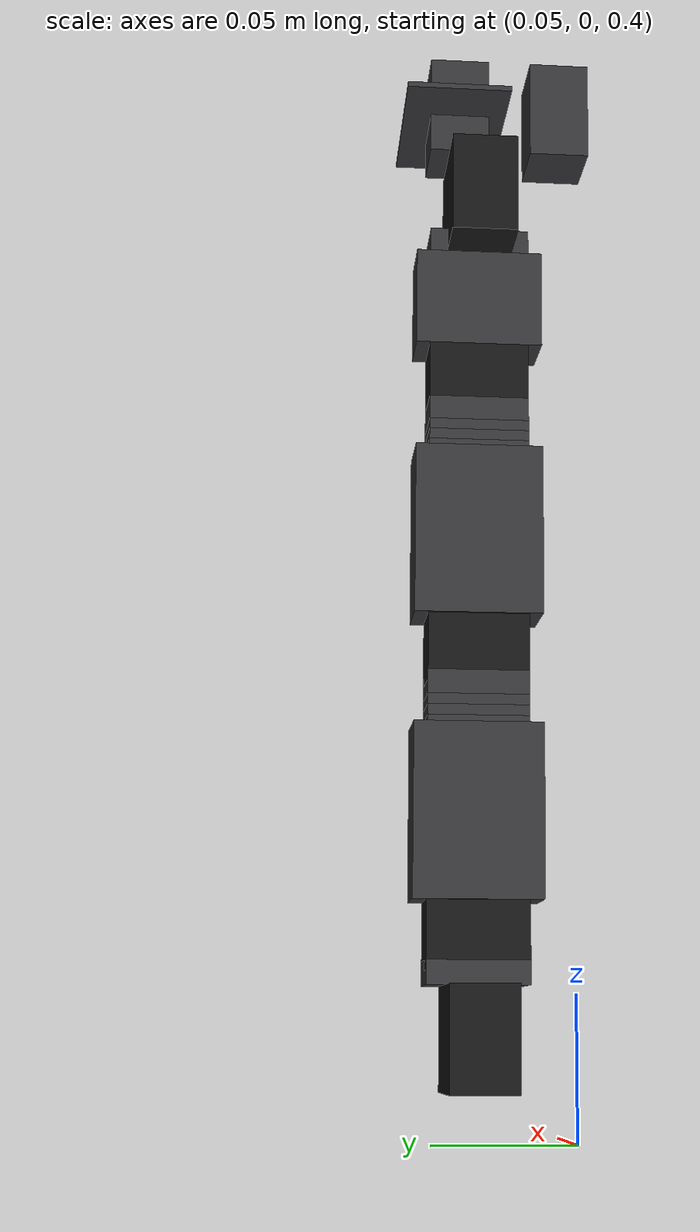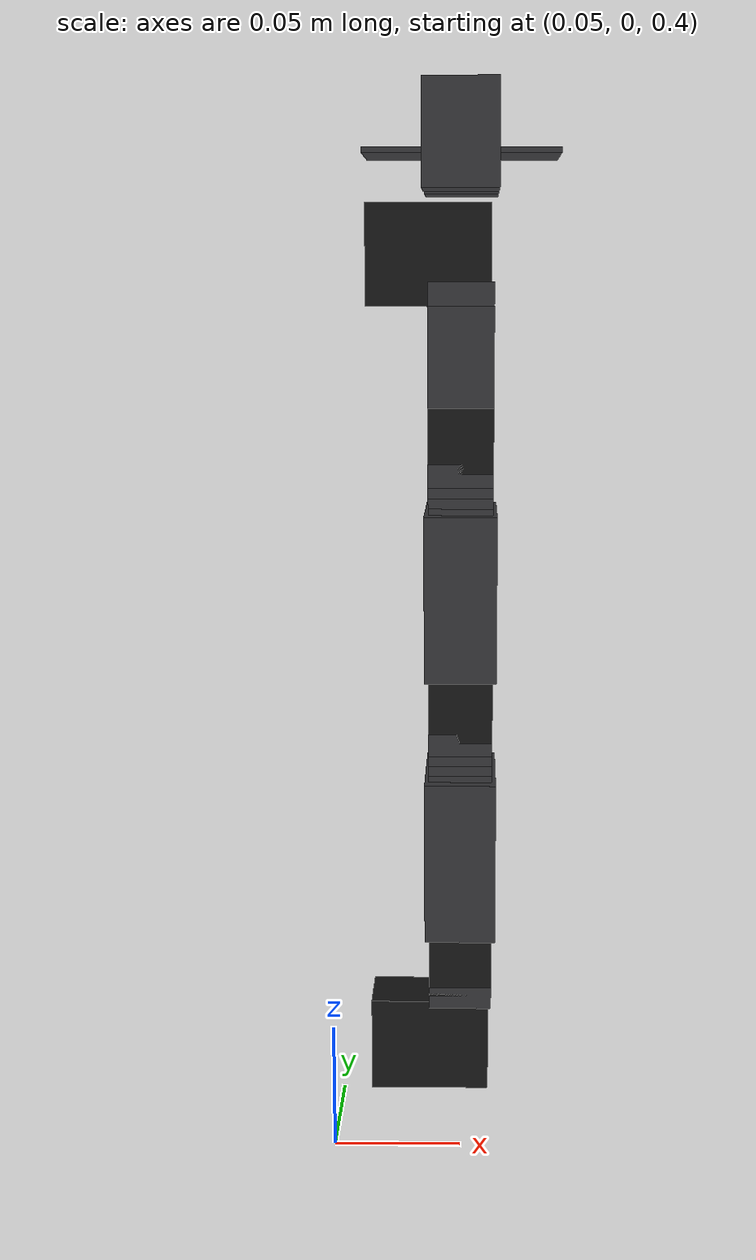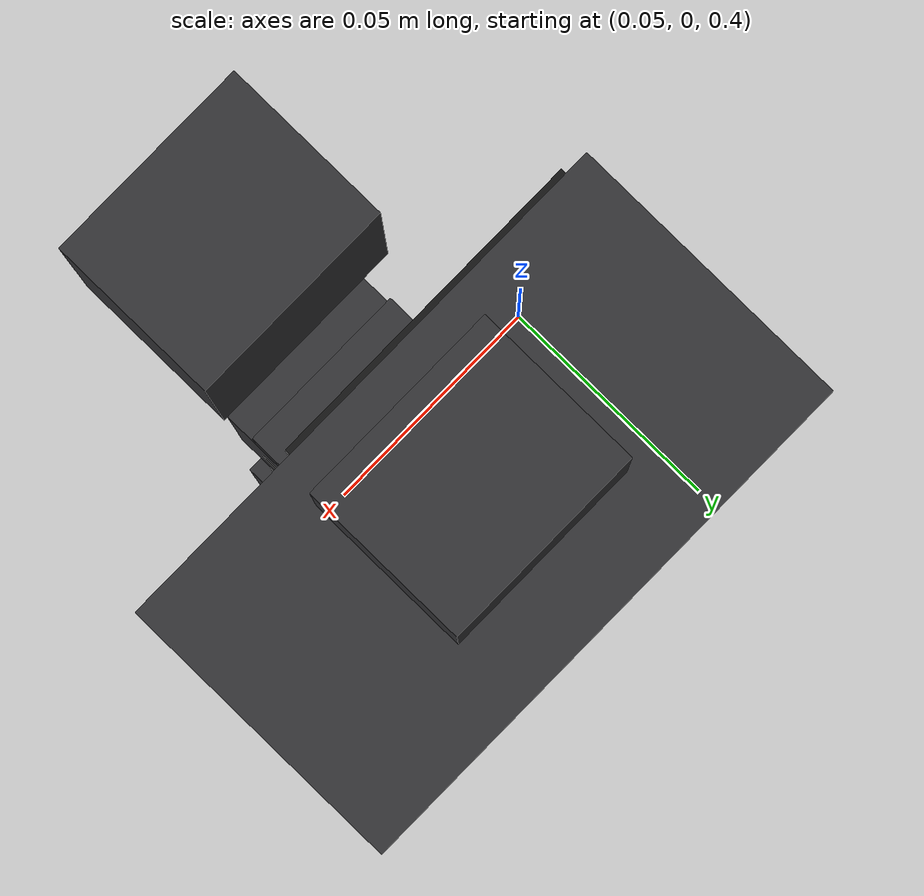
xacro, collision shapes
<?xml version="1.0"?>
<!-- Describe URDF for PhantomX Pincher Arm -->
<robot name="turtlebot_arm" xmlns:xacro="http://ros.org/wiki/xacro">

    <!-- We can configure joints velocity limit and lower/upper limits
          to allow access to different operational areas, e.g. left handed vs. right handed robot -->
    <xacro:property name="joints_vlimit" value="1.571"/>
    <xacro:property name="pan_llimit" value="-2.617"/>
    <xacro:property name="pan_ulimit" value="2.617"/>
    <xacro:property name="shoulder_llimit" value="-2.2"/>
    <xacro:property name="shoulder_ulimit" value="2.16"/>
    <xacro:property name="elbow_llimit" value="-2.42"/>
    <xacro:property name="elbow_ulimit" value="2.38"/>
    <xacro:property name="wrist_llimit" value="-1.72"/>
    <xacro:property name="wrist_ulimit" value="1.68"/>

    <!-- Included URDF Files -->

     <!-- Pincher arm is same as Turtlebot -->
    <xacro:include filename="$(find turtlebot_arm_description)/urdf/turtlebot_arm.xacro"/>

    <!-- As we don't have here a turtlebot base, add a base_link link as its location reference -->
    <link name="base_link"/>

    <!-- Turtlebot arm macro -->
    <xacro:turtlebot_arm parent="base_link" color="Gray" gripper_color="Gray"   pincher_gripper="true" turtlebot_gripper="false">
      <!-- Place the "floating" arm at the location it should be if mounted on a turtlebot,
           as pick and place and other demos assume this location -->
      <origin xyz="0.1 0.03 0.435"/>
    </xacro:turtlebot_arm>
</robot>

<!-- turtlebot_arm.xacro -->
<!-- Arm description for Turtlebot Arm and PhantomX Pincher arm -->
<robot xmlns:xacro="http://ros.org/wiki/xacro">
  <xacro:include filename="$(find turtlebot_arm_description)/urdf/arm_hardware.xacro"/>

  <material name="White">
    <color rgba="0.87 0.90 0.87 1.0"/>
  </material>
  <material name="Black">
    <color rgba="0.08 0.08 0.08 1.0"/>
  </material>
  <material name="Gray">
    <color rgba="0.2 0.2 0.21 1.0"/>
  </material>
  <material name="Green">
    <color rgba="0.22 0.32 0.14 1.0"/>
  </material>

  <xacro:macro name="turtlebot_arm" params="parent color pincher_gripper turtlebot_gripper gripper_color *origin">
    <link name="arm_base_link"/>
    <joint name="arm_base_joint" type="fixed">
      <xacro:insert_block name="origin"/>
      <parent link="${parent}"/>
      <child link="arm_base_link"/>
    </joint>

    <!-- fake gripper_link joint gives us a free servo!
         this makes us 5DOF and saves you $44.90
         that's a lot of coin! -->
    <link name="gripper_link"/>
    <joint name="gripper_link_joint" type="revolute">
      <origin xyz="0 0 0.112" rpy="0 -1.57 0"/>
      <parent link="arm_wrist_flex_link"/>
      <child link="gripper_link"/>
      <limit effort="30" velocity="1" lower="-3.14" upper="3.14"/>
      <axis xyz="1 0 0"/>
    </joint>

    <!-- shoulder pan joint -->
    <xacro:dynamixel_AX12_fixed parent="arm_base_link" name="arm_shoulder_pan_servo">
      <origin xyz="0 0 0" rpy="${M_PI/2} 0 ${M_PI/2}"/>
    </xacro:dynamixel_AX12_fixed>
    <xacro:bioloid_F3_revolute parent="arm_shoulder_pan_servo_link" name="arm_shoulder_pan" color="${color}"
                               vlimit="${joints_vlimit}" llimit="${pan_llimit}" ulimit="${pan_ulimit}">
      <origin xyz="0 ${AX12_WIDTH/2} 0" rpy="${-M_PI/2} ${M_PI/2} ${M_PI}"/>
    </xacro:bioloid_F3_revolute>

    <!-- shoulder lift joint -->
    <xacro:dynamixel_AX12_fixed parent="arm_shoulder_pan_link" name="arm_shoulder_lift_servo">
      <origin xyz="0 0 ${-AX12_HEIGHT-F10_HEIGHT+0.001}" rpy="0 ${M_PI} 0"/>
    </xacro:dynamixel_AX12_fixed>
    <xacro:bioloid_F4_revolute parent="arm_shoulder_lift_servo_link" name="arm_shoulder_lift" color="${color}"
                               vlimit="${joints_vlimit}" llimit="${shoulder_llimit}" ulimit="${shoulder_ulimit}">
      <origin xyz="0 0 0" rpy="0 0 0"/>
    </xacro:bioloid_F4_revolute>
    <xacro:bioloid_F10_fixed parent="arm_shoulder_lift_link" name="arm_shoulder_F10_0" color="${color}">
      <origin xyz="0 0 ${F4_HEIGHT+F10_HEIGHT/2}" rpy="0 0 0"/>
    </xacro:bioloid_F10_fixed>
    <xacro:bioloid_F10_fixed parent="arm_shoulder_F10_0_link" name="arm_shoulder_F10_1" color="${color}">
      <origin xyz="0 0 ${F10_HEIGHT}" rpy="0 0 0"/>
    </xacro:bioloid_F10_fixed>
    <xacro:bioloid_F10_fixed parent="arm_shoulder_F10_1_link" name="arm_shoulder_F10_2" color="${color}">
      <origin xyz="0 0 ${F10_HEIGHT}" rpy="0 0 0"/>
    </xacro:bioloid_F10_fixed>
    <xacro:bioloid_F3_fixed parent="arm_shoulder_F10_2_link" name="arm_shoulder_F3_0" color="${color}">
      <origin xyz="0 0 ${F10_HEIGHT/2}" rpy="0 ${M_PI} 0"/>
    </xacro:bioloid_F3_fixed>

    <!-- elbow joint -->
    <xacro:dynamixel_AX12_fixed parent="arm_shoulder_F3_0_link" name="arm_elbow_flex_servo">
      <origin xyz="0 0 ${-AX12_HEIGHT-F10_HEIGHT+0.001}" rpy="0 ${M_PI} 0"/>
    </xacro:dynamixel_AX12_fixed>
    <xacro:bioloid_F4_revolute parent="arm_elbow_flex_servo_link" name="arm_elbow_flex" color="${color}"
                               vlimit="${joints_vlimit}" llimit="${elbow_llimit}" ulimit="${elbow_ulimit}">
      <origin xyz="0 0 0" rpy="0 0 0"/>
    </xacro:bioloid_F4_revolute>
    <xacro:bioloid_F10_fixed parent="arm_elbow_flex_link" name="arm_elbow_F10_0" color="${color}">
      <origin xyz="0 0 ${F4_HEIGHT+F10_HEIGHT/2}" rpy="0 0 0"/>
    </xacro:bioloid_F10_fixed>
    <xacro:bioloid_F10_fixed parent="arm_elbow_F10_0_link" name="arm_elbow_F10_1" color="${color}">
      <origin xyz="0 0 ${F10_HEIGHT}" rpy="0 0 0"/>
    </xacro:bioloid_F10_fixed>
    <xacro:bioloid_F10_fixed parent="arm_elbow_F10_1_link" name="arm_elbow_F10_2" color="${color}">
      <origin xyz="0 0 ${F10_HEIGHT}" rpy="0 0 0"/>
    </xacro:bioloid_F10_fixed>
    <xacro:bioloid_F3_fixed parent="arm_elbow_F10_2_link" name="arm_elbow_F3_0" color="${color}">
      <origin xyz="0 0 ${F10_HEIGHT/2}" rpy="0 ${M_PI} 0"/>
    </xacro:bioloid_F3_fixed>

    <!-- wrist joint -->
    <xacro:dynamixel_AX12_fixed parent="arm_elbow_F3_0_link" name="arm_wrist_flex_servo">
      <origin xyz="0 0 ${-AX12_HEIGHT-F10_HEIGHT+0.001}" rpy="0 ${M_PI} 0"/>
    </xacro:dynamixel_AX12_fixed>
    <xacro:bioloid_F2_revolute parent="arm_wrist_flex_servo_link" name="arm_wrist_flex" color="${color}"
                               vlimit="${joints_vlimit}" llimit="${wrist_llimit}" ulimit="${wrist_ulimit}">
      <origin xyz="0 0 0" rpy="0 0 0"/>
    </xacro:bioloid_F2_revolute>

  <!-- gripper - Load either Turtlebot gripper or Pincher Gripper -->
  <xacro:if value="${pincher_gripper}">
  <xacro:include filename="$(find turtlebot_arm_description)/urdf/pincher_gripper.xacro"/>
  </xacro:if>
  <xacro:if value="${turtlebot_gripper}">
  <xacro:include filename="$(find turtlebot_arm_description)/urdf/turtlebot_gripper.xacro"/>
  </xacro:if>

  </xacro:macro>

</robot>

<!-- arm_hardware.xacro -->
<!-- Basic URDF components for Turtlebot Arm and PhantomX Pincher Arm-->
<robot xmlns:xacro="http://ros.org/wiki/xacro">
  <xacro:property name="M_PI" value="3.14159"/>
  <xacro:property name="M_SCALE" value="0.001"/>
  <xacro:property name="F10_HEIGHT" value="0.004"/>
  <xacro:property name="F4_HEIGHT" value="0.0525"/>
  <xacro:property name="F3_HEIGHT" value="0.009"/>
  <xacro:property name="AX12_HEIGHT" value="0.0385"/>
  <xacro:property name="AX12_WIDTH" value="0.038"/>
  <xacro:property name="AX12_LENGTH" value="0.050"/>
  <xacro:property name="F2_HEIGHT" value="0.0265"/>
  <xacro:property name="FINGER_HEIGHT" value="0.038"/>

  <!-- Calculates the inertial properties of a bounding box. From
       https://en.wikipedia.org/wiki/List_of_moments_of_inertia#List_of_3D_inertia_tensors-->
  <xacro:macro name="box_inertia" params="length width height mass">
    <inertial>
      <mass value="${mass}"/>
      <origin xyz="0 0 0"/>
      <inertia ixx="${mass/12*(height**2+length**2)}" ixy="0" ixz = "0"
               iyy="${mass/12*(width**2+length**2)}" iyz="0"
               izz="${mass/12*(width**2+height**2)}"/>
    </inertial>
  </xacro:macro>

  <xacro:macro name="arm_mount" params="parent name color *origin">
    <joint name="${name}_joint" type="fixed">
      <xacro:insert_block name="origin"/>
      <parent link="${parent}"/>
      <child link="${name}_link"/>
    </joint>

    <link name="${name}_link">
      <xacro:box_inertia length="0.074" width="0.074" height="0.004" mass="0.018"/>

      <visual>
        <origin xyz="-0.028 -0.0493 0.014" rpy="0.0 0.0 -${M_PI/2}"/>
        <geometry>
          <mesh filename="package://turtlebot_arm_description/meshes/mount.stl" scale="${M_SCALE} ${M_SCALE} ${M_SCALE}"/>
        </geometry>
        <material name="${color}"/>
      </visual>

      <collision>
        <origin xyz="-0.01 0.0 0.0165" rpy="0.0 0.0 0.0"/>
        <geometry>
          <box size="0.074 0.074 0.004"/>
        </geometry>
      </collision>
    </link>

    <gazebo reference="${name}_link">
      <material>Gazebo/${color}</material>
      <selfCollide>true</selfCollide>
      <gravity>true</gravity>
    </gazebo>
  </xacro:macro>

  <xacro:macro name="dynamixel_AX12_fixed" params="parent name *origin">
    <joint name="${name}_joint" type="fixed">
      <xacro:insert_block name="origin"/>
      <parent link="${parent}"/>
      <child link="${name}_link"/>
    </joint>

    <link name="${name}_link">
      <inertial>
        <mass value="0.055"/>
        <origin xyz="0 0 0"/>
        <inertia ixx="0.000017012" ixy="0.0" ixz="0.0"
                 iyy="0.000013258" iyz="0.0"
                 izz="0.000009483"/>
      </inertial>

      <visual>
        <origin xyz=" 0 0 0 " rpy="0 0 0"/>
        <geometry>
          <mesh filename="package://turtlebot_arm_description/meshes/ax12_box.stl" scale="${M_SCALE} ${M_SCALE} ${M_SCALE}"/>
        </geometry>
        <material name="Black"/>
      </visual>

      <collision>
        <origin xyz="0.0 0.0 -0.01241" rpy="0 0 0"/>
        <geometry>
          <box size="0.025 0.038 0.04762"/>
        </geometry>
      </collision>
    </link>

    <gazebo reference="${name}_link">
      <material>Gazebo/Black</material>
      <selfCollide>true</selfCollide>
      <gravity>true</gravity>
    </gazebo>
  </xacro:macro>

  <xacro:macro name="bioloid_F10_fixed" params="parent name color *origin">
    <joint name="${name}_joint" type="fixed">
      <xacro:insert_block name="origin"/>
      <parent link="${parent}"/>
      <child link="${name}_link"/>
    </joint>

    <link name="${name}_link">
      <xacro:box_inertia length="0.025" width="0.038" height="0.004" mass="0.004"/>

      <visual>
        <origin xyz=" 0 0 0 " rpy="0 0 0"/>
        <geometry>
          <mesh filename="package://turtlebot_arm_description/meshes/F10.stl" scale="${M_SCALE} ${M_SCALE} ${M_SCALE}"/>
        </geometry>
        <material name="${color}"/>
      </visual>

      <collision>
        <origin xyz="0.0 0.0 0.0" rpy="0 0 0"/>
        <geometry>
          <box size="0.025 0.038 0.004"/>
        </geometry>
      </collision>
    </link>

    <gazebo reference="${name}_link">
      <material>Gazebo/${color}</material>
      <selfCollide>true</selfCollide>
      <gravity>true</gravity>
    </gazebo>
  </xacro:macro>

  <xacro:macro name="bioloid_F3_fixed" params="parent name color *origin">
    <joint name="${name}_joint" type="fixed">
      <xacro:insert_block name="origin"/>
      <parent link="${parent}"/>
      <child link="${name}_link"/>
    </joint>

    <link name="${name}_link">
      <xacro:box_inertia length="0.025" width="0.038" height="0.009" mass="0.005"/>

      <visual>
        <origin xyz=" 0 0 0 " rpy="0 0 0"/>
        <geometry>
          <mesh filename="package://turtlebot_arm_description/meshes/F3.stl" scale="${M_SCALE} ${M_SCALE} ${M_SCALE}"/>
        </geometry>
        <material name="${color}"/>
      </visual>

      <collision>
        <origin xyz="0.0 0.0 -0.0045" rpy="0 0 0"/>
        <geometry>
          <box size="0.025 0.038 0.009"/>
        </geometry>
      </collision>
    </link>

    <gazebo reference="${name}_link">
      <material>Gazebo/${color}</material>
      <selfCollide>true</selfCollide>
      <gravity>true</gravity>
    </gazebo>
  </xacro:macro>

  <xacro:macro name="bioloid_F3_revolute" params="parent name color llimit ulimit vlimit *origin">
    <joint name="${name}_joint" type="revolute">
      <xacro:insert_block name="origin"/>
      <axis xyz="0 0 -1"/>
      <limit effort="30" velocity="${vlimit}" lower="${llimit}" upper="${ulimit}"/>
      <dynamics friction="0.13"/>
      <parent link="${parent}"/>
      <child link="${name}_link"/>
    </joint>

    <link name="${name}_link">
      <xacro:box_inertia length="0.025" width="0.038" height="0.009" mass="0.008"/>

      <visual>
        <origin xyz=" 0 0 0 " rpy="0 0 0"/>
        <geometry>
          <mesh filename="package://turtlebot_arm_description/meshes/F3.stl" scale="${M_SCALE} ${M_SCALE} ${M_SCALE}"/>
        </geometry>
        <material name="${color}"/>
      </visual>

      <collision>
        <origin xyz="0.0 0.0 -0.0045" rpy="0 0 0"/>
        <geometry>
          <box size="0.025 0.038 0.009"/>
        </geometry>
      </collision>
    </link>

    <gazebo reference="${name}_link">
      <material>Gazebo/${color}</material>
      <selfCollide>true</selfCollide>
      <gravity>true</gravity>
    </gazebo>
  </xacro:macro>

  <xacro:macro name="bioloid_F2_revolute" params="parent name color llimit ulimit vlimit *origin">
    <joint name="${name}_joint" type="revolute">
      <xacro:insert_block name="origin"/>
      <axis xyz="0 1 0"/>
      <limit effort="30" velocity="${vlimit}" lower="${llimit}" upper="${ulimit}"/>
      <dynamics friction="0.13"/>
      <parent link="${parent}"/>
      <child link="${name}_link"/>
    </joint>

    <link name="${name}_link">
      <xacro:box_inertia length="0.025" width="0.0485" height="0.0375" mass="0.010"/>

      <visual>
        <origin xyz=" 0 0 0 " rpy="0 0 0"/>
        <geometry>
          <mesh filename="package://turtlebot_arm_description/meshes/F2.stl" scale="${M_SCALE} ${M_SCALE} ${M_SCALE}"/>
        </geometry>
        <material name="${color}"/>
      </visual>

      <collision>
        <origin xyz="0.0 0.0 0.00775" rpy="0 0 0"/>
        <geometry>
          <box size="0.025 0.0485 0.0375"/>
        </geometry>
      </collision>
    </link>

    <gazebo reference="${name}_link">
      <material>Gazebo/${color}</material>
      <selfCollide>true</selfCollide>
      <gravity>true</gravity>
    </gazebo>
  </xacro:macro>

  <xacro:macro name="bioloid_F4_revolute" params="parent name color llimit ulimit vlimit *origin">
    <joint name="${name}_joint" type="revolute">
      <xacro:insert_block name="origin"/>
      <axis xyz="0 1 0"/>
      <limit effort="30" velocity="${vlimit}" lower="${llimit}" upper="${ulimit}"/>
      <dynamics friction="0.13"/>
      <parent link="${parent}"/>
      <child link="${name}_link"/>
    </joint>

    <link name="${name}_link">
      <xacro:box_inertia length="0.028" width="0.0485" height="0.065" mass="0.016"/>

      <visual>
        <origin xyz=" 0 0 0 " rpy="0 0 0"/>
        <geometry>
          <mesh filename="package://turtlebot_arm_description/meshes/F4.stl" scale="${M_SCALE} ${M_SCALE} ${M_SCALE}"/>
        </geometry>
        <material name="${color}"/>
      </visual>

      <collision>
        <origin xyz="0.0 0.0 0.0215" rpy="0 0 0"/>
        <geometry>
          <box size="0.028 0.0485 0.065"/>
        </geometry>
      </collision>
    </link>

    <gazebo reference="${name}_link">
      <material>Gazebo/${color}</material>
      <selfCollide>true</selfCollide>
      <gravity>true</gravity>
    </gazebo>
  </xacro:macro>

  <xacro:macro name="gripper_finger_base" params="parent name color *origin">
    <joint name="${name}_joint" type="fixed">
      <xacro:insert_block name="origin"/>
      <parent link="${parent}"/>
      <child link="${name}_link"/>
    </joint>

    <link name="${name}_link">
      <xacro:box_inertia length="0.002" width="0.075" height="0.040" mass="0.00001"/>
      <visual>
        <origin xyz="0 0 0" rpy="0 0 0"/>
        <geometry>
          <box size="0.002 0.075 0.040"/>
        </geometry>
        <material name="${color}"/>
      </visual>

      <collision>
        <geometry>
          <box size="0.002 0.075 0.040"/>
        </geometry>
      </collision>
    </link>

    <gazebo reference="${name}_link">
      <material>Gazebo/${color}</material>
      <selfCollide>true</selfCollide>
      <gravity>true</gravity>
    </gazebo>
  </xacro:macro>

    <xacro:macro name="pincher_gripper" params="name color *origin">
      <link name="${name}_link">
      <xacro:box_inertia length="0.036" width="0.028" height="0.004" mass="0.00001"/>
      <visual>
        <xacro:insert_block name="origin"/>
        <geometry>
          <mesh filename="package://turtlebot_arm_description/meshes/pincher_finger.stl" scale=".01 .01 .01"/>
        </geometry>
        <material name="${color}"/>
      </visual>
      <collision>
        <xacro:insert_block name="origin"/>
        <geometry>
          <box size="0.023 0.028 0.038"/>
        </geometry>
      </collision>
    </link>

    <gazebo reference="${name}_link">
      <material>Gazebo/${color}</material>
      <selfCollide>true</selfCollide>
      <gravity>true</gravity>
    </gazebo>
  </xacro:macro>
</robot>

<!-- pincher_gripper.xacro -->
<!-- PhantomX Pincher Arm gripper URDF-->
<robot xmlns:xacro="http://ros.org/wiki/xacro">
    <xacro:bioloid_F3_fixed parent="arm_wrist_flex_link" name="arm_wrist_F3_0" color="${color}">
      <origin xyz="0 0 ${F2_HEIGHT}" rpy="0 ${M_PI} ${-M_PI}"/>
    </xacro:bioloid_F3_fixed>

    <!-- gripper joint -->
    <xacro:dynamixel_AX12_fixed parent="arm_wrist_F3_0_link" name="gripper_servo" >
      <origin xyz="0 0 ${-AX12_WIDTH/2}" rpy="${M_PI/2} ${M_PI} ${M_PI/2}"/>
    </xacro:dynamixel_AX12_fixed>

    <xacro:gripper_finger_base parent="gripper_servo_link" name="gripper_finger_base" color="${color}">
      <origin xyz="0.01  ${AX12_WIDTH} 0" rpy="${M_PI/2} ${-M_PI} ${M_PI/2}"/>
    </xacro:gripper_finger_base>

     <!-- Finger 1 -->
    <joint name="gripper_joint" type="prismatic">
      <origin xyz="0 0 0" rpy="0 0 0"/>
      <axis xyz="1 0 0"/>
      <limit effort="30" velocity="0.5" lower="0.002" upper="0.031"/>
      <parent link="gripper_servo_link"/>
      <child link="gripper_active_link"/>
    </joint>

    <xacro:pincher_gripper name="gripper_active" color="${color}" >
      <origin xyz="-0.0086 0.0414 0" rpy="${-M_PI/2} 0 0"/>
    </xacro:pincher_gripper>

    <!-- Finger 2 -->
    <!-- Note: currently static but should be a Mimic of Finger 1 -->
    <joint name="gripper2_joint" type="fixed">
      <parent link="gripper_servo_link"/>
      <child link="gripper_active2_link"/>
    </joint>

    <xacro:pincher_gripper name="gripper_active2" color="${color}" >
      <origin xyz="-0.0314 0.0414 0" rpy="${-M_PI/2} ${M_PI} 0"/>
    </xacro:pincher_gripper>

    <!-- Using Mimic -->
    <!-- gripper 2 joint -->
</robot>
